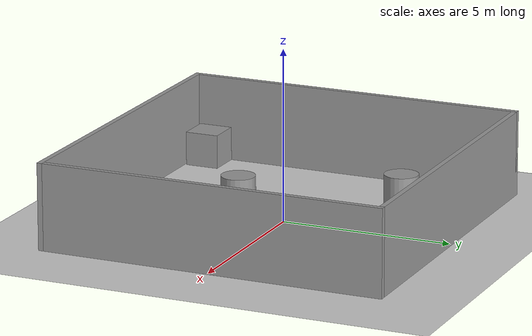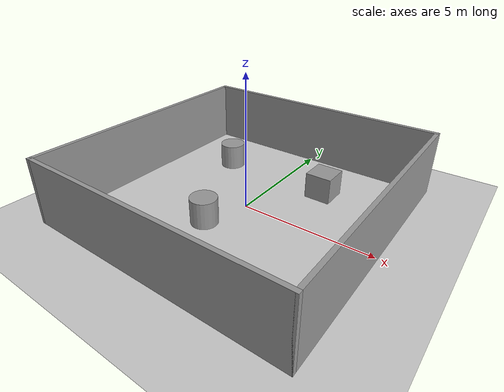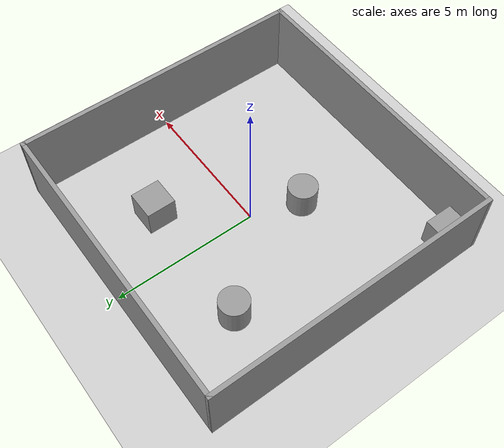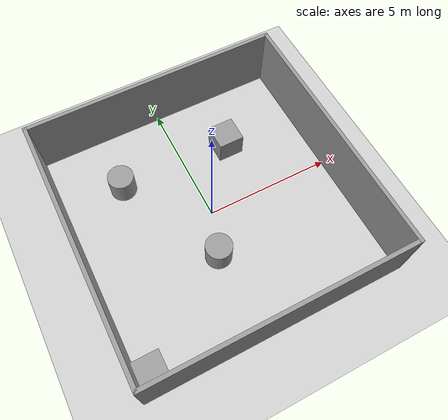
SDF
<sdf version="1.7">
 <world name="default">
  <light name="sun" type="directional">
   <pose>0 0 10 0 -0 0</pose>
   <diffuse>0.8 0.8 0.8 1</diffuse>
   <specular>0.2 0.2 0.2 1</specular>
   <attenuation>
    <range>1000</range>
    <constant>0.9</constant>
    <linear>0.01</linear>
    <quadratic>0.001</quadratic>
   </attenuation>
   <direction>-0.5 0.1 -0.9</direction>
   <spot><inner_angle>0</inner_angle><outer_angle>0</outer_angle><falloff>0</falloff></spot>
  </light>
  <model name="ground_plane">
   <static>1</static>
   <link name="link">
    <collision name="collision">
     <geometry><plane><normal>0 0 1</normal><size>100 100</size></plane></geometry>
     <surface>
      <contact><collide_bitmask>65535</collide_bitmask></contact>
      <friction><ode><mu>100</mu><mu2>50</mu2></ode></friction>
     </surface>
    </collision>
    <visual name="visual">
     <cast_shadows>0</cast_shadows>
     <geometry><plane><normal>0 0 1</normal><size>100 100</size></plane></geometry>
     <material>
      <script><uri>file://media/materials/scripts/gazebo.material</uri><name>Gazebo/Grey</name></script>
     </material>
    </visual>
   </link>
  </model>
  <gravity>0 0 -9.8</gravity>
  <magnetic_field>6e-06 2.3e-05 -4.2e-05</magnetic_field>
  <atmosphere type="adiabatic"/>
  <physics type="ode">
   <max_step_size>0.001</max_step_size>
   <real_time_factor>1</real_time_factor>
   <real_time_update_rate>1000</real_time_update_rate>
  </physics>
  <scene><ambient>0.4 0.4 0.4 1</ambient><background>0.7 0.7 0.7 1</background><shadows>1</shadows></scene>
  <spherical_coordinates>
   <surface_model>EARTH_WGS84</surface_model>
   <latitude_deg>0</latitude_deg>
   <longitude_deg>0</longitude_deg>
   <elevation>0</elevation>
   <heading_deg>0</heading_deg>
  </spherical_coordinates>
  <model name="unit_box">
   <pose>-4.42498 -4.3787 0.499995 1e-05 -0 3e-06</pose>
   <link name="link">
    <inertial>
     <mass>1</mass>
     <inertia>
      <ixx>0.166667</ixx>
      <ixy>0</ixy>
      <ixz>0</ixz>
      <iyy>0.166667</iyy>
      <iyz>0</iyz>
      <izz>0.166667</izz>
     </inertia>
    </inertial>
    <collision name="collision"><geometry><box><size>1 1 1</size></box></geometry></collision>
    <visual name="visual">
     <geometry><box><size>1 1 1</size></box></geometry>
     <material>
      <script><name>Gazebo/Grey</name><uri>file://media/materials/scripts/gazebo.material</uri></script>
     </material>
    </visual>
   </link>
  </model>
  <model name="unit_cylinder">
   <pose>-0.580964 -1.65851 0.499997 3e-06 4e-06 -0</pose>
   <link name="link">
    <inertial>
     <mass>1</mass>
     <inertia><ixx>0.145833</ixx><ixy>0</ixy><ixz>0</ixz><iyy>0.145833</iyy><iyz>0</iyz><izz>0.125</izz></inertia>
    </inertial>
    <collision name="collision">
     <geometry><cylinder><radius>0.5</radius><length>1</length></cylinder></geometry>
    </collision>
    <visual name="visual">
     <geometry><cylinder><radius>0.5</radius><length>1</length></cylinder></geometry>
     <material>
      <script><name>Gazebo/Grey</name><uri>file://media/materials/scripts/gazebo.material</uri></script>
     </material>
    </visual>
   </link>
  </model>
  <model name="unit_box_0">
   <pose>1.8759 2.44319 0.499995 -1e-05 -0 0</pose>
   <link name="link">
    <inertial>
     <mass>1</mass>
     <inertia>
      <ixx>0.166667</ixx>
      <ixy>0</ixy>
      <ixz>0</ixz>
      <iyy>0.166667</iyy>
      <iyz>0</iyz>
      <izz>0.166667</izz>
     </inertia>
    </inertial>
    <collision name="collision"><geometry><box><size>1 1 1</size></box></geometry></collision>
    <visual name="visual">
     <geometry><box><size>1 1 1</size></box></geometry>
     <material>
      <script><name>Gazebo/Grey</name><uri>file://media/materials/scripts/gazebo.material</uri></script>
     </material>
    </visual>
   </link>
  </model>
  <model name="unit_cylinder_0">
   <pose>-2.57705 2.50351 0.499997 3e-06 4e-06 -0</pose>
   <link name="link">
    <inertial>
     <mass>1</mass>
     <inertia><ixx>0.145833</ixx><ixy>0</ixy><ixz>0</ixz><iyy>0.145833</iyy><iyz>0</iyz><izz>0.125</izz></inertia>
    </inertial>
    <collision name="collision">
     <geometry><cylinder><radius>0.5</radius><length>1</length></cylinder></geometry>
    </collision>
    <visual name="visual">
     <geometry><cylinder><radius>0.5</radius><length>1</length></cylinder></geometry>
     <material>
      <script><name>Gazebo/Grey</name><uri>file://media/materials/scripts/gazebo.material</uri></script>
     </material>
    </visual>
   </link>
  </model>
  <model name="Untitled">
   <link name="Wall_11">
    <pose>5 0 0 0 0 -1.5708</pose>
    <visual name="Wall_11_Visual">
     <pose>0 0 1.25 0 -0 0</pose>
     <geometry><box><size>10.15 0.15 2.5</size></box></geometry>
     <material>
      <script><uri>file://media/materials/scripts/gazebo.material</uri><name>Gazebo/Grey</name></script>
      <ambient>1 1 1 1</ambient>
      <shader type="pixel"/>
     </material>
     <meta><layer>0</layer></meta>
    </visual>
    <collision name="Wall_11_Collision">
     <pose>0 0 1.25 0 -0 0</pose>
     <geometry><box><size>10.15 0.15 2.5</size></box></geometry>
     <surface>
      <friction>
       <ode><mu>1</mu><mu2>1</mu2><fdir1>0 0 0</fdir1><slip1>0</slip1><slip2>0</slip2></ode>
       <torsional>
        <coefficient>1</coefficient>
        <patch_radius>0</patch_radius>
        <surface_radius>0</surface_radius>
        <use_patch_radius>1</use_patch_radius>
        <ode><slip>0</slip></ode>
       </torsional>
      </friction>
      <bounce><restitution_coefficient>0</restitution_coefficient><threshold>1e+06</threshold></bounce>
      <contact>
       <collide_without_contact>0</collide_without_contact>
       <collide_without_contact_bitmask>1</collide_without_contact_bitmask>
       <collide_bitmask>1</collide_bitmask>
       <ode>
        <soft_cfm>0</soft_cfm>
        <soft_erp>0.2</soft_erp>
        <kp>1e+13</kp>
        <kd>1</kd>
        <max_vel>0.01</max_vel>
        <min_depth>0</min_depth>
       </ode>
       <bullet>
        <split_impulse>1</split_impulse>
        <split_impulse_penetration_threshold>-0.01</split_impulse_penetration_threshold>
        <soft_cfm>0</soft_cfm>
        <soft_erp>0.2</soft_erp>
        <kp>1e+13</kp>
        <kd>1</kd>
       </bullet>
      </contact>
     </surface>
    </collision>
   </link>
   <link name="Wall_4">
    <pose>0 -5 0 0 -0 0</pose>
    <visual name="Wall_4_Visual">
     <pose>0 0 1.25 0 -0 0</pose>
     <geometry><box><size>10.15 0.15 2.5</size></box></geometry>
     <material>
      <script><uri>file://media/materials/scripts/gazebo.material</uri><name>Gazebo/Grey</name></script>
      <ambient>1 1 1 1</ambient>
      <shader type="pixel"/>
     </material>
     <meta><layer>0</layer></meta>
    </visual>
    <collision name="Wall_4_Collision">
     <pose>0 0 1.25 0 -0 0</pose>
     <geometry><box><size>10.15 0.15 2.5</size></box></geometry>
     <surface>
      <friction>
       <ode><mu>1</mu><mu2>1</mu2><fdir1>0 0 0</fdir1><slip1>0</slip1><slip2>0</slip2></ode>
       <torsional>
        <coefficient>1</coefficient>
        <patch_radius>0</patch_radius>
        <surface_radius>0</surface_radius>
        <use_patch_radius>1</use_patch_radius>
        <ode><slip>0</slip></ode>
       </torsional>
      </friction>
      <bounce><restitution_coefficient>0</restitution_coefficient><threshold>1e+06</threshold></bounce>
      <contact>
       <collide_without_contact>0</collide_without_contact>
       <collide_without_contact_bitmask>1</collide_without_contact_bitmask>
       <collide_bitmask>1</collide_bitmask>
       <ode>
        <soft_cfm>0</soft_cfm>
        <soft_erp>0.2</soft_erp>
        <kp>1e+13</kp>
        <kd>1</kd>
        <max_vel>0.01</max_vel>
        <min_depth>0</min_depth>
       </ode>
       <bullet>
        <split_impulse>1</split_impulse>
        <split_impulse_penetration_threshold>-0.01</split_impulse_penetration_threshold>
        <soft_cfm>0</soft_cfm>
        <soft_erp>0.2</soft_erp>
        <kp>1e+13</kp>
        <kd>1</kd>
       </bullet>
      </contact>
     </surface>
    </collision>
   </link>
   <link name="Wall_7">
    <pose>0 5 0 0 -0 0</pose>
    <visual name="Wall_7_Visual">
     <pose>0 0 1.25 0 -0 0</pose>
     <geometry><box><size>10.15 0.15 2.5</size></box></geometry>
     <material>
      <script><uri>file://media/materials/scripts/gazebo.material</uri><name>Gazebo/Grey</name></script>
      <ambient>1 1 1 1</ambient>
      <shader type="pixel"/>
     </material>
     <meta><layer>0</layer></meta>
    </visual>
    <collision name="Wall_7_Collision">
     <pose>0 0 1.25 0 -0 0</pose>
     <geometry><box><size>10.15 0.15 2.5</size></box></geometry>
     <surface>
      <friction>
       <ode><mu>1</mu><mu2>1</mu2><fdir1>0 0 0</fdir1><slip1>0</slip1><slip2>0</slip2></ode>
       <torsional>
        <coefficient>1</coefficient>
        <patch_radius>0</patch_radius>
        <surface_radius>0</surface_radius>
        <use_patch_radius>1</use_patch_radius>
        <ode><slip>0</slip></ode>
       </torsional>
      </friction>
      <bounce><restitution_coefficient>0</restitution_coefficient><threshold>1e+06</threshold></bounce>
      <contact>
       <collide_without_contact>0</collide_without_contact>
       <collide_without_contact_bitmask>1</collide_without_contact_bitmask>
       <collide_bitmask>1</collide_bitmask>
       <ode>
        <soft_cfm>0</soft_cfm>
        <soft_erp>0.2</soft_erp>
        <kp>1e+13</kp>
        <kd>1</kd>
        <max_vel>0.01</max_vel>
        <min_depth>0</min_depth>
       </ode>
       <bullet>
        <split_impulse>1</split_impulse>
        <split_impulse_penetration_threshold>-0.01</split_impulse_penetration_threshold>
        <soft_cfm>0</soft_cfm>
        <soft_erp>0.2</soft_erp>
        <kp>1e+13</kp>
        <kd>1</kd>
       </bullet>
      </contact>
     </surface>
    </collision>
   </link>
   <link name="Wall_9">
    <pose>-5 0 0 0 -0 1.5708</pose>
    <visual name="Wall_9_Visual">
     <pose>0 0 1.25 0 -0 0</pose>
     <geometry><box><size>10.15 0.15 2.5</size></box></geometry>
     <material>
      <script><uri>file://media/materials/scripts/gazebo.material</uri><name>Gazebo/Grey</name></script>
      <ambient>1 1 1 1</ambient>
      <shader type="pixel"/>
     </material>
     <meta><layer>0</layer></meta>
    </visual>
    <collision name="Wall_9_Collision">
     <pose>0 0 1.25 0 -0 0</pose>
     <geometry><box><size>10.15 0.15 2.5</size></box></geometry>
     <surface>
      <friction>
       <ode><mu>1</mu><mu2>1</mu2><fdir1>0 0 0</fdir1><slip1>0</slip1><slip2>0</slip2></ode>
       <torsional>
        <coefficient>1</coefficient>
        <patch_radius>0</patch_radius>
        <surface_radius>0</surface_radius>
        <use_patch_radius>1</use_patch_radius>
        <ode><slip>0</slip></ode>
       </torsional>
      </friction>
      <bounce><restitution_coefficient>0</restitution_coefficient><threshold>1e+06</threshold></bounce>
      <contact>
       <collide_without_contact>0</collide_without_contact>
       <collide_without_contact_bitmask>1</collide_without_contact_bitmask>
       <collide_bitmask>1</collide_bitmask>
       <ode>
        <soft_cfm>0</soft_cfm>
        <soft_erp>0.2</soft_erp>
        <kp>1e+13</kp>
        <kd>1</kd>
        <max_vel>0.01</max_vel>
        <min_depth>0</min_depth>
       </ode>
       <bullet>
        <split_impulse>1</split_impulse>
        <split_impulse_penetration_threshold>-0.01</split_impulse_penetration_threshold>
        <soft_cfm>0</soft_cfm>
        <soft_erp>0.2</soft_erp>
        <kp>1e+13</kp>
        <kd>1</kd>
       </bullet>
      </contact>
     </surface>
    </collision>
   </link>
   <static>1</static>
  </model>
 </world>
</sdf>
